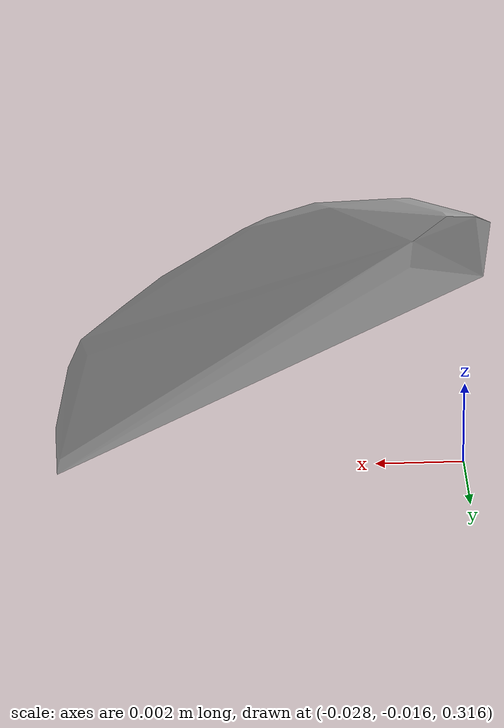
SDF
<?xml version="1.0"?>
<sdf version="1.7">
  <model name="vascular_partexport047">
    <link name="vascular_partexport047_body">
      <visual name="vascular_partexport047_visual">
        <geometry>
          <mesh>
            <uri>vascular_partexport047.obj</uri>
          </mesh>
        </geometry>
      </visual>
      <collision name="vascular_partexport047_collision">
        <geometry>
          <mesh>
            <uri>vascular_partexport047.obj</uri>
          </mesh>
        </geometry>
      </collision>
    </link>
    <frame name="vascular_partexport047_center">
      <pose relative_to="vascular_partexport047_body">0 0 0 0 0 0</pose>
    </frame>
  </model>
</sdf>
